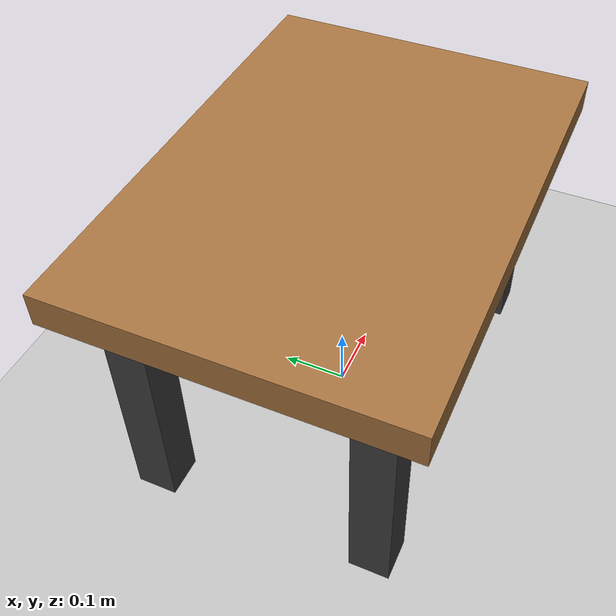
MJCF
<mujoco model="simple_background">

  <worldbody>
    <!-- Floor -->
    <geom name="floor"
          type="plane"
          size="5 5 0.1"
          rgba="0.75 0.75 0.75 1"/>

    <!-- Table -->
    <!-- Table height = 0.45 m -->
    <body name="table" pos="0 0 0.40">

      <!-- Table top (60cm x 40cm, thickness 5cm) -->
      <geom type="box"
            size="0.35 0.25 0.025"
            pos="0 0 0"
            rgba="0.65 0.45 0.25 1"/>

      <!-- Legs -->
      <!-- Leg height = 0.40 m (half = 0.20) -->
      <geom type="box"
            size="0.03 0.03 0.20"
            pos=" 0.27  0.17 -0.225"
            rgba="0.25 0.25 0.25 1"/>

      <geom type="box"
            size="0.03 0.03 0.20"
            pos="-0.27  0.17 -0.225"
            rgba="0.25 0.25 0.25 1"/>

      <geom type="box"
            size="0.03 0.03 0.20"
            pos=" 0.27 -0.17 -0.225"
            rgba="0.25 0.25 0.25 1"/>

      <geom type="box"
            size="0.03 0.03 0.20"
            pos="-0.27 -0.17 -0.225"
            rgba="0.25 0.25 0.25 1"/>

    </body>

    <!-- Light -->
    <light pos="0 0 2.0" dir="0 0 -1" diffuse="1 1 1"/>
  </worldbody>

</mujoco>
